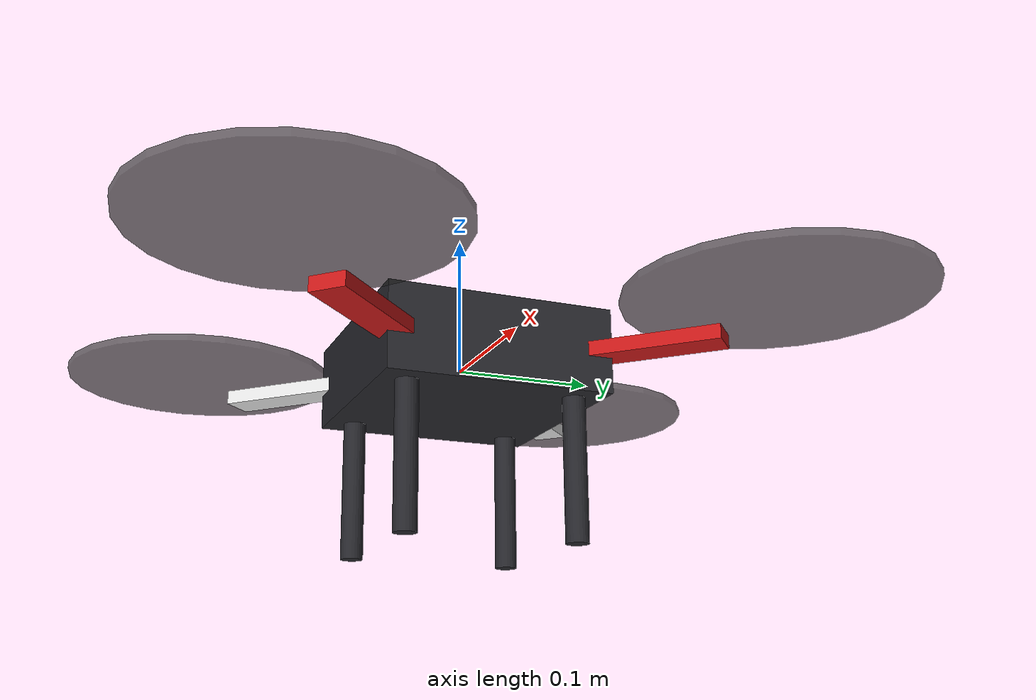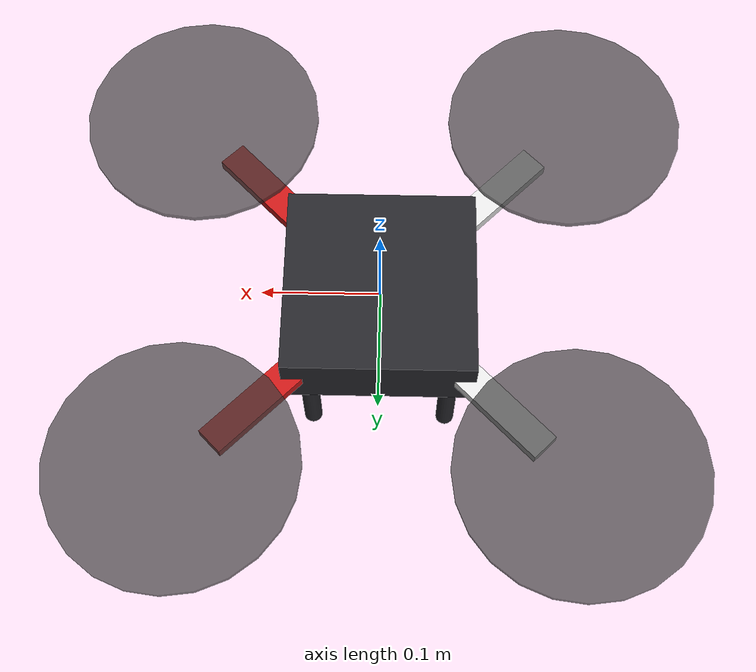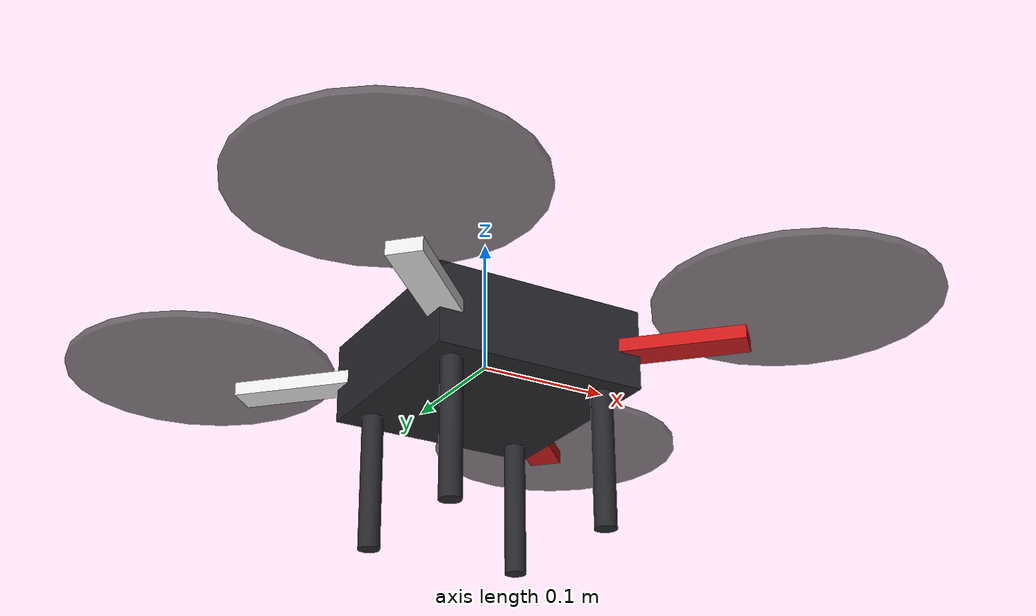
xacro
<?xml version="1.0"?>
<robot name="f450" xmlns:xacro="http://www.ros.org/wiki/xacro">

  <xacro:include filename="$(find my_drone)/urdf/f450_params.xacro"/>
  <xacro:include filename="$(find my_drone)/urdf/quad_gazebo.xacro"/>

  <material name="carbon">  <color rgba="0.15 0.15 0.17 1.0"/></material>
  <material name="red_arm"> <color rgba="0.80 0.10 0.10 1.0"/></material>
  <material name="white_arm"><color rgba="0.90 0.90 0.90 1.0"/></material>
  <material name="prop_grey"><color rgba="0.20 0.20 0.20 0.7"/></material>

  <!-- ==================== BODY ====================
       Carries the entire vehicle mass and inertia. The arm and rotor
       links below are deliberately light so nothing is double-counted. -->
  <link name="base_link">
    <inertial>
      <origin xyz="0 0 0" rpy="0 0 0"/>
      <mass value="${mass_base}"/>
      <inertia ixx="${body_ixx}" ixy="0.0" ixz="0.0"
               iyy="${body_iyy}" iyz="0.0"
               izz="${body_izz}"/>
    </inertial>
    <visual>
      <origin xyz="0 0 0" rpy="0 0 0"/>
      <geometry><box size="${body_x} ${body_y} ${body_z}"/></geometry>
      <material name="carbon"/>
    </visual>
    <collision>
      <origin xyz="0 0 0" rpy="0 0 0"/>
      <geometry><box size="${body_x} ${body_y} ${body_z}"/></geometry>
    </collision>
  </link>

  <xacro:macro name="arm" params="name yaw colour">
    <link name="arm_${name}">
      <inertial>
        <origin xyz="${arm_len/2} 0 0" rpy="0 0 0"/>
        <mass value="0.001"/>
        <inertia ixx="1e-6" ixy="0" ixz="0" iyy="1e-6" iyz="0" izz="1e-6"/>
      </inertial>
      <visual>
        <origin xyz="${arm_len/2} 0 0" rpy="0 0 0"/>
        <geometry><box size="${arm_len} ${arm_w} ${arm_h}"/></geometry>
        <material name="${colour}"/>
      </visual>
    </link>
    <joint name="arm_${name}_joint" type="fixed">
      <parent link="base_link"/>
      <child  link="arm_${name}"/>
      <origin xyz="0 0 0" rpy="0 0 ${yaw}"/>
    </joint>
  </xacro:macro>

  <xacro:arm name="fr" yaw="${-pi/4}"    colour="red_arm"/>
  <xacro:arm name="fl" yaw="${ pi/4}"    colour="red_arm"/>
  <xacro:arm name="rl" yaw="${ 3*pi/4}"  colour="white_arm"/>
  <xacro:arm name="rr" yaw="${-3*pi/4}"  colour="white_arm"/>

  <!-- ==================== LANDING GEAR ==================== -->
  <xacro:macro name="leg" params="name x y">
    <link name="leg_${name}">
      <inertial>
        <origin xyz="0 0 0" rpy="0 0 0"/>
        <mass value="0.001"/>
        <inertia ixx="1e-6" ixy="0" ixz="0" iyy="1e-6" iyz="0" izz="1e-6"/>
      </inertial>
      <visual>
        <geometry><cylinder radius="${leg_r}" length="${leg_len}"/></geometry>
        <material name="carbon"/>
      </visual>
      <collision>
        <geometry><cylinder radius="${leg_r}" length="${leg_len}"/></geometry>
      </collision>
    </link>
    <joint name="leg_${name}_joint" type="fixed">
      <parent link="base_link"/>
      <child  link="leg_${name}"/>
      <origin xyz="${x} ${y} ${-body_z/2 - leg_len/2}" rpy="0 0 0"/>
    </joint>
  </xacro:macro>

  <xacro:leg name="fr" x="0.06"  y="-0.06"/>
  <xacro:leg name="fl" x="0.06"  y=" 0.06"/>
  <xacro:leg name="rl" x="-0.06" y=" 0.06"/>
  <xacro:leg name="rr" x="-0.06" y="-0.06"/>

  <xacro:macro name="rotor" params="number x y">
    <link name="rotor_${number}">
      <inertial>
        <origin xyz="0 0 0" rpy="0 0 0"/>
        <mass value="${mass_rotor}"/>
        <!-- Thin disc: Izz = m r^2 / 2, Ixx = Iyy = m r^2 / 4 -->
        <inertia ixx="${mass_rotor * prop_radius * prop_radius / 4}" ixy="0.0" ixz="0.0"
                 iyy="${mass_rotor * prop_radius * prop_radius / 4}" iyz="0.0"
                 izz="${mass_rotor * prop_radius * prop_radius / 2}"/>
      </inertial>
      <visual>
        <geometry><cylinder radius="${prop_radius}" length="${prop_h}"/></geometry>
        <material name="prop_grey"/>
      </visual>
      <!-- No collision on the props: a spinning disc colliding with the
           arms only wastes solver time and can destabilise the sim. -->
    </link>
    <joint name="rotor_${number}_joint" type="continuous">
      <parent link="base_link"/>
      <child  link="rotor_${number}"/>
      <origin xyz="${x} ${y} ${rotor_z}" rpy="0 0 0"/>
      <axis xyz="0 0 1"/>
      <limit effort="100.0" velocity="${max_rot_velocity}"/>
      <dynamics damping="0.0" friction="0.0"/>
    </joint>
  </xacro:macro>

  <xacro:rotor number="0" x="${ rotor_xy}" y="${-rotor_xy}"/>  <!-- front-right, ccw -->
  <xacro:rotor number="1" x="${-rotor_xy}" y="${ rotor_xy}"/>  <!-- rear-left,   ccw -->
  <xacro:rotor number="2" x="${ rotor_xy}" y="${ rotor_xy}"/>  <!-- front-left,  cw  -->
  <xacro:rotor number="3" x="${-rotor_xy}" y="${-rotor_xy}"/>  <!-- rear-right,  cw  -->

  <!-- ==================== PLUGINS ==================== -->
  <xacro:quad_gazebo_plugins/>

</robot>

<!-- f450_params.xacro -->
<robot xmlns:xacro="http://www.ros.org/wiki/xacro">

  <!-- ==================== MASS BUDGET (kg) ==================== -->
  <!-- F450/Q450 PCB frame kit                                 282 g -->
  <!-- A2212 1000KV motors           4 x  53 g               = 212 g -->
  <!-- SimonK 30A ESCs               4 x  25 g               = 100 g -->
  <!-- Orange 8045 ABS props         4 x  10 g               =  40 g -->
  <!-- Orange 3S 2200mAh 40C LiPo                              185 g -->
  <!-- FS-iA10B receiver                                        20 g -->
  <!-- ESP32 DevKit + MPU-6050 + 5x7 perfboard + wiring         42 g -->
  <!-- Zipties / tape / misc                                    20 g -->
  <!--                                            All-up: ~= 901 g   -->
  <xacro:property name="mass_total"   value="0.90"/>

  <xacro:property name="mass_rotor"   value="0.010"/>
  <xacro:property name="mass_base"    value="${mass_total - 4*mass_rotor}"/>

  <!-- ==================== GEOMETRY (m) ==================== -->
  <!-- F450 = 450 mm motor-to-motor diagonal -> 225 mm radius.
       In X configuration each rotor sits at 225/sqrt(2) = 159 mm on both axes. -->
  <xacro:property name="arm_radius"   value="0.225"/>
  <xacro:property name="rotor_xy"     value="0.15910"/>
  <xacro:property name="rotor_z"      value="0.023"/>

  <xacro:property name="body_x"       value="0.16"/>
  <xacro:property name="body_y"       value="0.16"/>
  <xacro:property name="body_z"       value="0.06"/>

  <xacro:property name="arm_len"      value="0.19"/>
  <xacro:property name="arm_w"        value="0.025"/>
  <xacro:property name="arm_h"        value="0.010"/>

  <!-- 8045 prop = 8 inch diameter -> 0.1016 m radius -->
  <xacro:property name="prop_radius"  value="0.1016"/>
  <xacro:property name="prop_h"       value="0.005"/>

  <!-- Landing gear, so the model rests on skids rather than on its belly -->
  <xacro:property name="leg_len"      value="0.10"/>
  <xacro:property name="leg_r"        value="0.008"/>

  <xacro:property name="body_ixx"     value="0.0098"/>
  <xacro:property name="body_iyy"     value="0.0098"/>
  <xacro:property name="body_izz"     value="0.0192"/>

  <xacro:property name="motor_constant"    value="5.7e-6"/>
  <xacro:property name="moment_constant"   value="0.016"/>
  <xacro:property name="max_rot_velocity"  value="1000"/>
  <xacro:property name="rotor_drag_coeff"  value="8.06428e-05"/>
  <xacro:property name="rolling_moment_coeff" value="1.0e-6"/>
  <xacro:property name="time_constant_up"   value="0.0125"/>
  <xacro:property name="time_constant_down" value="0.025"/>

  <!-- Joint (visual) speed = real rotor speed / this. Thrust is computed
       from the real speed, so this only affects what the eye sees. -->
  <xacro:property name="rotor_slowdown_sim" value="10"/>

  <!-- ==================== VELOCITY CONTROLLER ====================
       Gains scaled for this 0.90 kg, Ixx=0.0098 kg m^2 airframe. -->
  <xacro:property name="velocity_gain"     value="2.7 2.7 2.7"/>
  <xacro:property name="attitude_gain"     value="2.0 2.0 0.15"/>
  <xacro:property name="angular_rate_gain" value="0.4 0.4 0.18"/>
  <xacro:property name="max_linear_accel"  value="3 3 3"/>
  <xacro:property name="max_linear_vel"    value="5 5 3"/>
  <xacro:property name="max_angular_vel"   value="3 3 2"/>

  <!-- ==================== TOPICS ==================== -->
  <xacro:property name="robot_ns"     value="f450"/>

</robot>
